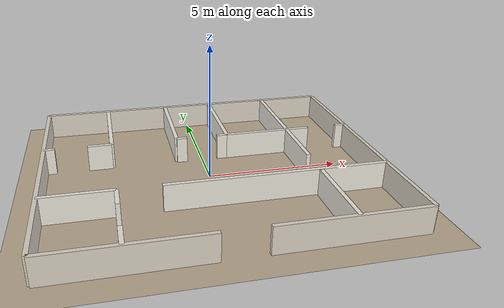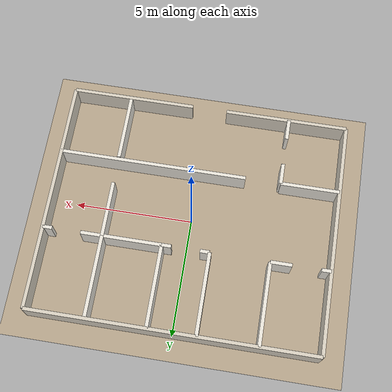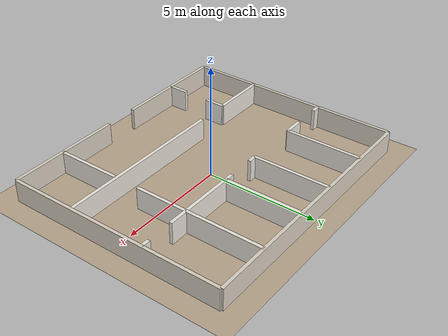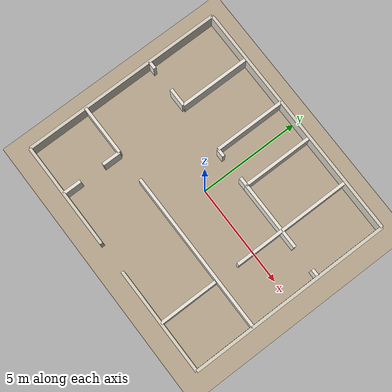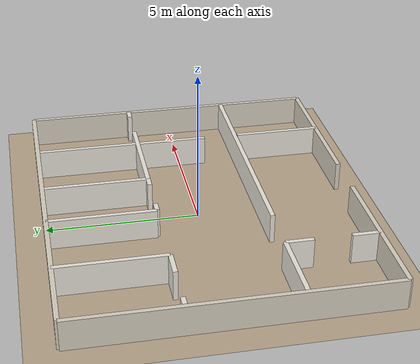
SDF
<?xml version="1.0" ?>
<sdf version="1.8">

  <world name="house_world">

    <physics name="1ms" type="ignored">
      <max_step_size>0.001</max_step_size>
      <real_time_factor>1.0</real_time_factor>
    </physics>

    <!-- Core simulation systems -->
    <plugin filename="libignition-gazebo-physics-system.so"
            name="ignition::gazebo::systems::Physics"/>
    <plugin filename="libignition-gazebo-user-commands-system.so"
            name="ignition::gazebo::systems::UserCommands"/>
    <plugin filename="libignition-gazebo-scene-broadcaster-system.so"
            name="ignition::gazebo::systems::SceneBroadcaster"/>

    <!--
      Sensors system — MANDATORY for lidar/camera to publish data.
      ogre2 required for gpu_lidar.
    -->
    <plugin filename="libignition-gazebo-sensors-system.so"
            name="ignition::gazebo::systems::Sensors">
      <render_engine>ogre2</render_engine>
    </plugin>

    <plugin filename="libignition-gazebo-imu-system.so"
            name="ignition::gazebo::systems::Imu"/>
    <plugin filename="libignition-gazebo-contact-system.so"
            name="ignition::gazebo::systems::Contact"/>

    <!-- Indoor lighting: soft warm overhead lights per zone -->
    <light type="directional" name="sun">
      <cast_shadows>false</cast_shadows>
      <pose>0 0 15 0 0 0</pose>
      <diffuse>0.9 0.88 0.82 1</diffuse>
      <specular>0.2 0.2 0.2 1</specular>
      <direction>0 0 -1</direction>
      <attenuation>
        <range>30</range>
        <constant>0.5</constant>
        <linear>0.01</linear>
        <quadratic>0.001</quadratic>
      </attenuation>
    </light>

    <light type="point" name="light_living">
      <pose>0 -3.5 3 0 0 0</pose>
      <diffuse>1.0 0.95 0.85 1</diffuse>
      <specular>0.1 0.1 0.1 1</specular>
      <attenuation><range>8</range><constant>0.3</constant><linear>0.05</linear><quadratic>0.002</quadratic></attenuation>
      <cast_shadows>false</cast_shadows>
    </light>

    <light type="point" name="light_hallway">
      <pose>0 0 3 0 0 0</pose>
      <diffuse>1.0 0.95 0.85 1</diffuse>
      <specular>0.1 0.1 0.1 1</specular>
      <attenuation><range>8</range><constant>0.3</constant><linear>0.05</linear><quadratic>0.002</quadratic></attenuation>
      <cast_shadows>false</cast_shadows>
    </light>

    <light type="point" name="light_bedrooms">
      <pose>0 3.5 3 0 0 0</pose>
      <diffuse>1.0 0.95 0.85 1</diffuse>
      <specular>0.1 0.1 0.1 1</specular>
      <attenuation><range>8</range><constant>0.3</constant><linear>0.05</linear><quadratic>0.002</quadratic></attenuation>
      <cast_shadows>false</cast_shadows>
    </light>

    <!-- ===================================================================
         FLOOR
    ==================================================================== -->
    <model name="floor">
      <static>true</static>
      <pose>0 0 0 0 0 0</pose>
      <link name="link">
        <collision name="surface">
          <geometry><plane><normal>0 0 1</normal><size>14 12</size></plane></geometry>
          <surface><friction><ode><mu>1.0</mu><mu2>1.0</mu2></ode></friction></surface>
        </collision>
        <visual name="surface">
          <geometry><plane><normal>0 0 1</normal><size>14 12</size></plane></geometry>
          <material>
            <ambient>0.72 0.65 0.55 1</ambient>
            <diffuse>0.72 0.65 0.55 1</diffuse>
            <specular>0.05 0.05 0.05 1</specular>
          </material>
        </visual>
      </link>
    </model>

    <!-- ── Exterior walls ─────────────────────────────────────────────── -->

    <!-- South exterior wall — split for 1.5 m front door at X=0
         West segment: X=-6.0 to -0.75  length=5.25, centre=-3.375
         East segment: X=+0.75 to +6.0  length=5.25, centre=+3.375 -->
    <model name="outer_south_w">
      <static>true</static>
      <pose>-3.375 -5 0.5 0 0 0</pose>
      <link name="link">
        <collision name="col"><geometry><box><size>5.25 0.15 1.0</size></box></geometry><surface><friction><ode><mu>1.0</mu><mu2>1.0</mu2></ode></friction></surface></collision>
        <visual name="vis"><geometry><box><size>5.25 0.15 1.0</size></box></geometry><material><ambient>0.85 0.82 0.76 1</ambient><diffuse>0.85 0.82 0.76 1</diffuse><specular>0.1 0.1 0.1 1</specular></material></visual>
      </link>
    </model>

    <model name="outer_south_e">
      <static>true</static>
      <pose>3.375 -5 0.5 0 0 0</pose>
      <link name="link">
        <collision name="col"><geometry><box><size>5.25 0.15 1.0</size></box></geometry><surface><friction><ode><mu>1.0</mu><mu2>1.0</mu2></ode></friction></surface></collision>
        <visual name="vis"><geometry><box><size>5.25 0.15 1.0</size></box></geometry><material><ambient>0.85 0.82 0.76 1</ambient><diffuse>0.85 0.82 0.76 1</diffuse><specular>0.1 0.1 0.1 1</specular></material></visual>
      </link>
    </model>
    <!-- Front door gap: X=-0.75 to +0.75 (1.5 m) -->

    <!-- North exterior wall -->
    <model name="outer_north">
      <static>true</static>
      <pose>0 5 0.5 0 0 0</pose>
      <link name="link">
        <collision name="col"><geometry><box><size>12 0.15 1.0</size></box></geometry><surface><friction><ode><mu>1.0</mu><mu2>1.0</mu2></ode></friction></surface></collision>
        <visual name="vis"><geometry><box><size>12 0.15 1.0</size></box></geometry><material><ambient>0.85 0.82 0.76 1</ambient><diffuse>0.85 0.82 0.76 1</diffuse><specular>0.1 0.1 0.1 1</specular></material></visual>
      </link>
    </model>

    <!-- West exterior wall -->
    <model name="outer_west">
      <static>true</static>
      <pose>-6 0 0.5 0 0 0</pose>
      <link name="link">
        <collision name="col"><geometry><box><size>0.15 10 1.0</size></box></geometry><surface><friction><ode><mu>1.0</mu><mu2>1.0</mu2></ode></friction></surface></collision>
        <visual name="vis"><geometry><box><size>0.15 10 1.0</size></box></geometry><material><ambient>0.85 0.82 0.76 1</ambient><diffuse>0.85 0.82 0.76 1</diffuse><specular>0.1 0.1 0.1 1</specular></material></visual>
      </link>
    </model>

    <!-- East exterior wall -->
    <model name="outer_east">
      <static>true</static>
      <pose>6 0 0.5 0 0 0</pose>
      <link name="link">
        <collision name="col"><geometry><box><size>0.15 10 1.0</size></box></geometry><surface><friction><ode><mu>1.0</mu><mu2>1.0</mu2></ode></friction></surface></collision>
        <visual name="vis"><geometry><box><size>0.15 10 1.0</size></box></geometry><material><ambient>0.85 0.82 0.76 1</ambient><diffuse>0.85 0.82 0.76 1</diffuse><specular>0.1 0.1 0.1 1</specular></material></visual>
      </link>
    </model>

    <!-- ── Interior walls ─────────────────────────────────────────────── -->

    <model name="bedrm1_south_w">
      <static>true</static>
      <pose>-5.8 1.5 0.5 0 0 0</pose>
      <link name="link">
        <collision name="col"><geometry><box><size>0.4 0.15 1.0</size></box></geometry><surface><friction><ode><mu>1.0</mu><mu2>1.0</mu2></ode></friction></surface></collision>
        <visual name="vis"><geometry><box><size>0.4 0.15 1.0</size></box></geometry><material><ambient>0.92 0.90 0.86 1</ambient><diffuse>0.92 0.90 0.86 1</diffuse><specular>0.1 0.1 0.1 1</specular></material></visual>
      </link>
    </model>

    <model name="bedrm1_south_e">
      <static>true</static>
      <pose>-3.95 1.5 0.5 0 0 0</pose>
      <link name="link">
        <collision name="col"><geometry><box><size>0.9 0.15 1.0</size></box></geometry><surface><friction><ode><mu>1.0</mu><mu2>1.0</mu2></ode></friction></surface></collision>
        <visual name="vis"><geometry><box><size>0.9 0.15 1.0</size></box></geometry><material><ambient>0.92 0.90 0.86 1</ambient><diffuse>0.92 0.90 0.86 1</diffuse><specular>0.1 0.1 0.1 1</specular></material></visual>
      </link>
    </model>

    <!-- Bedroom 1 east wall (X=-3.5), Y=+1.5 to +5 -->
    <model name="bedrm1_east">
      <static>true</static>
      <pose>-3.5 3.25 0.5 0 0 0</pose>
      <link name="link">
        <collision name="col"><geometry><box><size>0.15 3.5 1.0</size></box></geometry><surface><friction><ode><mu>1.0</mu><mu2>1.0</mu2></ode></friction></surface></collision>
        <visual name="vis"><geometry><box><size>0.15 3.5 1.0</size></box></geometry><material><ambient>0.92 0.90 0.86 1</ambient><diffuse>0.92 0.90 0.86 1</diffuse><specular>0.1 0.1 0.1 1</specular></material></visual>
      </link>
    </model>

    <!-- Bathroom west wall (X=-1.0), Y=+1.5 to +5 -->
    <model name="bath_west">
      <static>true</static>
      <pose>-1.0 3.25 0.5 0 0 0</pose>
      <link name="link">
        <collision name="col"><geometry><box><size>0.15 3.5 1.0</size></box></geometry><surface><friction><ode><mu>1.0</mu><mu2>1.0</mu2></ode></friction></surface></collision>
        <visual name="vis"><geometry><box><size>0.15 3.5 1.0</size></box></geometry><material><ambient>0.92 0.90 0.86 1</ambient><diffuse>0.92 0.90 0.86 1</diffuse><specular>0.1 0.1 0.1 1</specular></material></visual>
      </link>
    </model>

    <!-- Bathroom east wall (X=+1.0), Y=+1.5 to +5 -->
    <model name="bath_east">
      <static>true</static>
      <pose>1.0 3.25 0.5 0 0 0</pose>
      <link name="link">
        <collision name="col"><geometry><box><size>0.15 3.5 1.0</size></box></geometry><surface><friction><ode><mu>1.0</mu><mu2>1.0</mu2></ode></friction></surface></collision>
        <visual name="vis"><geometry><box><size>0.15 3.5 1.0</size></box></geometry><material><ambient>0.92 0.90 0.86 1</ambient><diffuse>0.92 0.90 0.86 1</diffuse><specular>0.1 0.1 0.1 1</specular></material></visual>
      </link>
    </model>

    <model name="bath_south_w">
      <static>true</static>
      <pose>-0.8 1.5 0.5 0 0 0</pose>
      <link name="link">
        <collision name="col"><geometry><box><size>0.4 0.15 1.0</size></box></geometry><surface><friction><ode><mu>1.0</mu><mu2>1.0</mu2></ode></friction></surface></collision>
        <visual name="vis"><geometry><box><size>0.4 0.15 1.0</size></box></geometry><material><ambient>0.92 0.90 0.86 1</ambient><diffuse>0.92 0.90 0.86 1</diffuse><specular>0.1 0.1 0.1 1</specular></material></visual>
      </link>
    </model>

    <model name="bath_south_e">
      <static>true</static>
      <pose>0.8 1.5 0.5 0 0 0</pose>
      <link name="link">
        <collision name="col"><geometry><box><size>0.4 0.15 1.0</size></box></geometry><surface><friction><ode><mu>1.0</mu><mu2>1.0</mu2></ode></friction></surface></collision>
        <visual name="vis"><geometry><box><size>0.4 0.15 1.0</size></box></geometry><material><ambient>0.92 0.90 0.86 1</ambient><diffuse>0.92 0.90 0.86 1</diffuse><specular>0.1 0.1 0.1 1</specular></material></visual>
      </link>
    </model>

    <model name="bedrm2_south_w">
      <static>true</static>
      <pose>2.7 1.5 0.5 0 0 0</pose>
      <link name="link">
        <collision name="col"><geometry><box><size>3.4 0.15 1.0</size></box></geometry><surface><friction><ode><mu>1.0</mu><mu2>1.0</mu2></ode></friction></surface></collision>
        <visual name="vis"><geometry><box><size>3.4 0.15 1.0</size></box></geometry><material><ambient>0.92 0.90 0.86 1</ambient><diffuse>0.92 0.90 0.86 1</diffuse><specular>0.1 0.1 0.1 1</specular></material></visual>
      </link>
    </model>

    <model name="bedrm2_south_e">
      <static>true</static>
      <pose>5.8 1.5 0.5 0 0 0</pose>
      <link name="link">
        <collision name="col"><geometry><box><size>0.4 0.15 1.0</size></box></geometry><surface><friction><ode><mu>1.0</mu><mu2>1.0</mu2></ode></friction></surface></collision>
        <visual name="vis"><geometry><box><size>0.4 0.15 1.0</size></box></geometry><material><ambient>0.92 0.90 0.86 1</ambient><diffuse>0.92 0.90 0.86 1</diffuse><specular>0.1 0.1 0.1 1</specular></material></visual>
      </link>
    </model>

    <!-- Bedroom 2 west wall (X=+3.5), Y=+1.5 to +5 -->
    <model name="bedrm2_west">
      <static>true</static>
      <pose>3.5 3.25 0.5 0 0 0</pose>
      <link name="link">
        <collision name="col"><geometry><box><size>0.15 3.5 1.0</size></box></geometry><surface><friction><ode><mu>1.0</mu><mu2>1.0</mu2></ode></friction></surface></collision>
        <visual name="vis"><geometry><box><size>0.15 3.5 1.0</size></box></geometry><material><ambient>0.92 0.90 0.86 1</ambient><diffuse>0.92 0.90 0.86 1</diffuse><specular>0.1 0.1 0.1 1</specular></material></visual>
      </link>
    </model>

    <model name="bedrm3_west_s">
      <static>true</static>
      <pose>3.5 -3.55 0.5 0 0 0</pose>
      <link name="link">
        <collision name="col"><geometry><box><size>0.15 2.9 1.0</size></box></geometry><surface><friction><ode><mu>1.0</mu><mu2>1.0</mu2></ode></friction></surface></collision>
        <visual name="vis"><geometry><box><size>0.15 2.9 1.0</size></box></geometry><material><ambient>0.92 0.90 0.86 1</ambient><diffuse>0.92 0.90 0.86 1</diffuse><specular>0.1 0.1 0.1 1</specular></material></visual>
      </link>
    </model>

    <model name="bedrm3_west_n">
      <static>true</static>
      <pose>3.5 0.3 0.5 0 0 0</pose>
      <link name="link">
        <collision name="col"><geometry><box><size>0.15 2.4 1.0</size></box></geometry><surface><friction><ode><mu>1.0</mu><mu2>1.0</mu2></ode></friction></surface></collision>
        <visual name="vis"><geometry><box><size>0.15 2.4 1.0</size></box></geometry><material><ambient>0.92 0.90 0.86 1</ambient><diffuse>0.92 0.90 0.86 1</diffuse><specular>0.1 0.1 0.1 1</specular></material></visual>
      </link>
    </model>

    <!-- Kitchen south wall (Y=-2.0), X=-6 to -3.5 — no door, full wall -->
    <model name="kitchen_south">
      <static>true</static>
      <pose>-4.75 -2.0 0.5 0 0 0</pose>
      <link name="link">
        <collision name="col"><geometry><box><size>2.5 0.15 1.0</size></box></geometry><surface><friction><ode><mu>1.0</mu><mu2>1.0</mu2></ode></friction></surface></collision>
        <visual name="vis"><geometry><box><size>2.5 0.15 1.0</size></box></geometry><material><ambient>0.92 0.90 0.86 1</ambient><diffuse>0.92 0.90 0.86 1</diffuse><specular>0.1 0.1 0.1 1</specular></material></visual>
      </link>
    </model>

    <!-- Hallway/living room divider (Y=-2.0), X=-2.0 to +6
         Kitchen-living pass-through gap: X=-3.5 to -2.0 (1.5 m open arch) -->
    <model name="div_h_mid_e">
      <static>true</static>
      <pose>2.0 -2.0 0.5 0 0 0</pose>
      <link name="link">
        <collision name="col"><geometry><box><size>8.0 0.15 1.0</size></box></geometry><surface><friction><ode><mu>1.0</mu><mu2>1.0</mu2></ode></friction></surface></collision>
        <visual name="vis"><geometry><box><size>8.0 0.15 1.0</size></box></geometry><material><ambient>0.92 0.90 0.86 1</ambient><diffuse>0.92 0.90 0.86 1</diffuse><specular>0.1 0.1 0.1 1</specular></material></visual>
      </link>
    </model>

    <model name="kitchen_east_s">
      <static>true</static>
      <pose>-3.5 -4.55 0.5 0 0 0</pose>
      <link name="link">
        <collision name="col"><geometry><box><size>0.15 0.9 1.0</size></box></geometry><surface><friction><ode><mu>1.0</mu><mu2>1.0</mu2></ode></friction></surface></collision>
        <visual name="vis"><geometry><box><size>0.15 0.9 1.0</size></box></geometry><material><ambient>0.92 0.90 0.86 1</ambient><diffuse>0.92 0.90 0.86 1</diffuse><specular>0.1 0.1 0.1 1</specular></material></visual>
      </link>
    </model>

    <model name="kitchen_east_n">
      <static>true</static>
      <pose>-3.5 -2.45 0.5 0 0 0</pose>
      <link name="link">
        <collision name="col"><geometry><box><size>0.15 0.9 1.0</size></box></geometry><surface><friction><ode><mu>1.0</mu><mu2>1.0</mu2></ode></friction></surface></collision>
        <visual name="vis"><geometry><box><size>0.15 0.9 1.0</size></box></geometry><material><ambient>0.92 0.90 0.86 1</ambient><diffuse>0.92 0.90 0.86 1</diffuse><specular>0.1 0.1 0.1 1</specular></material></visual>
      </link>
    </model>

  </world>
</sdf>
